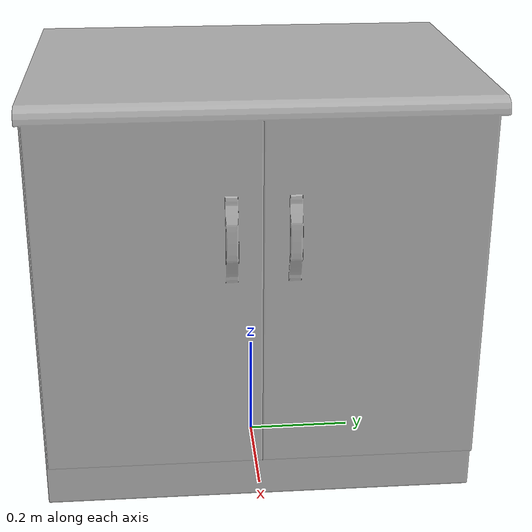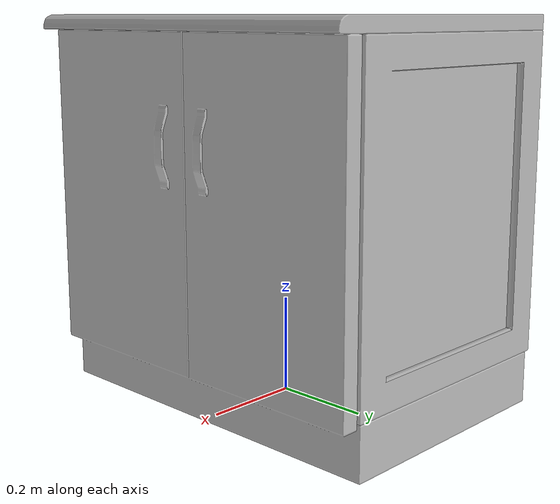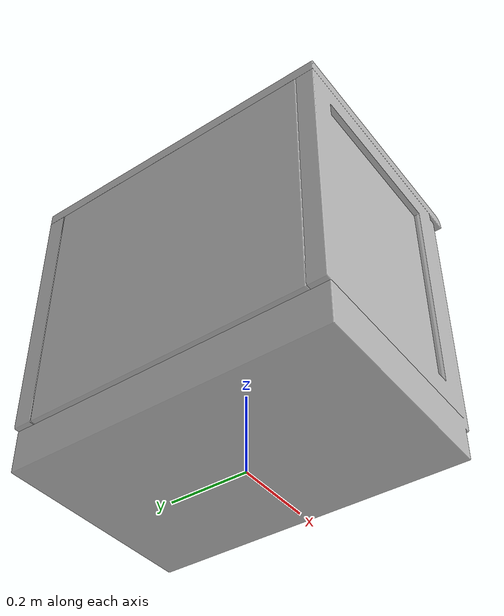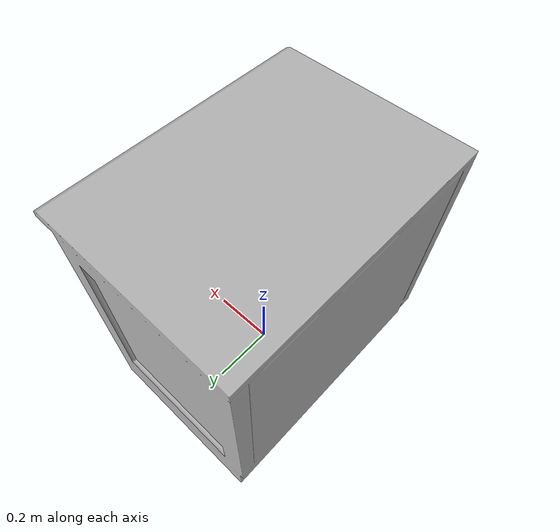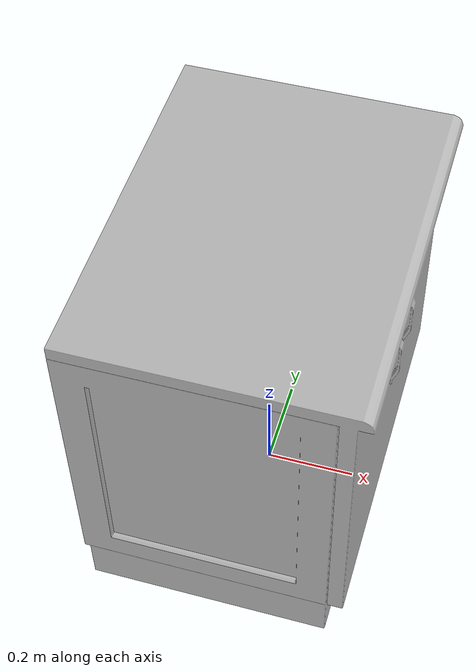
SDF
<?xml version='1.0'?>
<sdf version='1.4'>
  <model name='92'>
    <pose>0 0 0 0 0 0</pose>
    <static>true</static>
    <link name='link'>
      <collision name='collision'>
        <pose>0 0 0 0 0 0</pose>
        <geometry>
          <box>
            <size>0.600001 0.800014 2</size>
          </box>
        </geometry>
      </collision>
      <visual name='visual'>
        <pose>0 0 0 0 0 0</pose>
        <geometry>
          <mesh><uri>model://92/92.dae</uri></mesh>
        </geometry>
      </visual>
    </link>
  </model>
</sdf>
